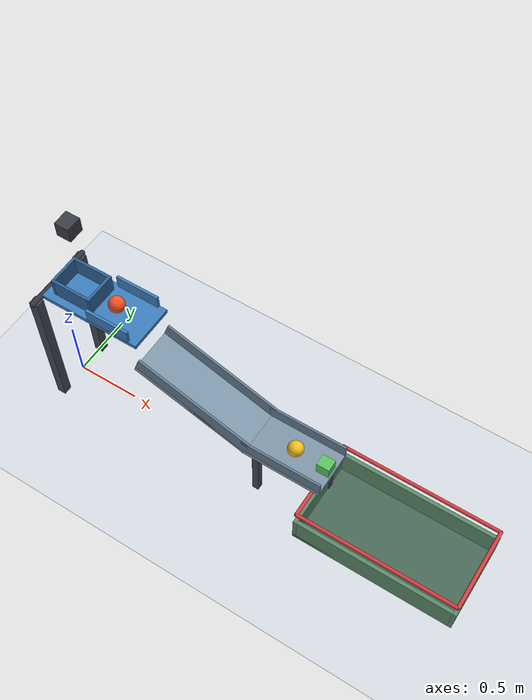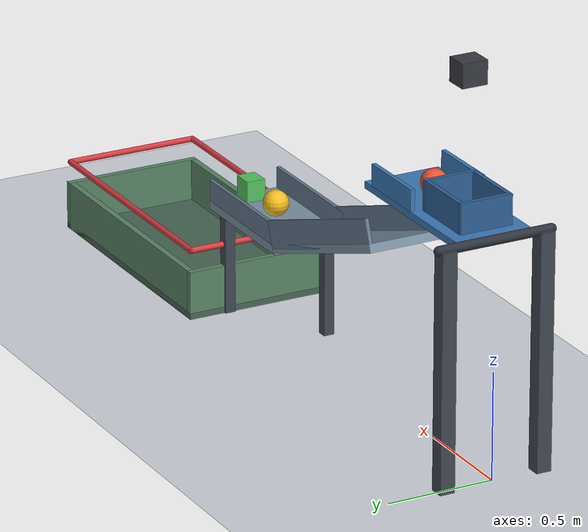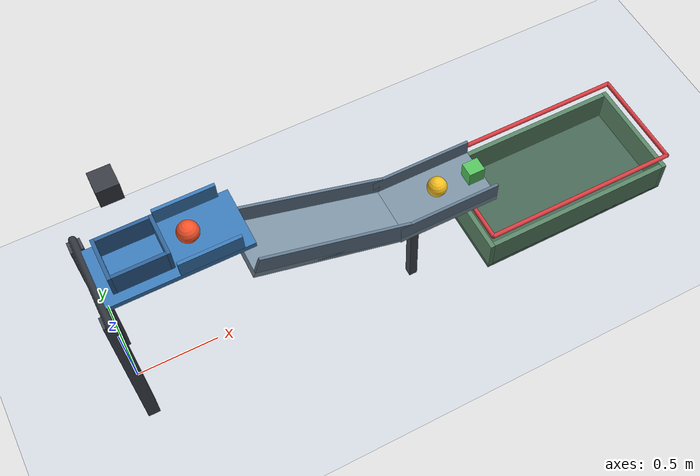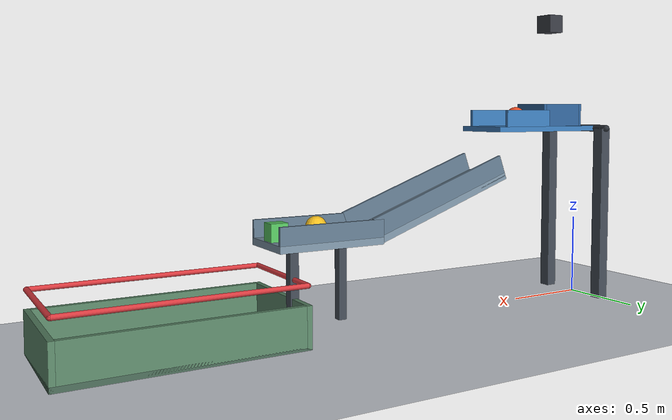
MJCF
<mujoco model="weight_tray_ball_chain">
  <compiler angle="degree" autolimits="true"/>
  <option timestep="0.002" gravity="0 0 -9.81" integrator="implicitfast" solver="Newton" iterations="100" cone="elliptic"/>
  <size njmax="1000" nconmax="300"/>
  <statistic center="1.6 0 0.85" extent="2.6"/>

  <visual>
    <headlight ambient="0.35 0.35 0.35" diffuse="0.75 0.75 0.75" specular="0.15 0.15 0.15"/>
    <global azimuth="135" elevation="-25"/>
  </visual>

  <worldbody>
    <light name="overhead" pos="1 -2 4" dir="0 0 -1" diffuse="0.8 0.8 0.8"/>
    <geom name="floor" type="plane" size="5 3 0.1" pos="0 0 0" friction="0.9 0.01 0.01" condim="6" rgba="0.82 0.84 0.87 1"/>

    <!-- The tray starts horizontal. Positive hinge rotation lowers its right end. -->
    <body name="tray_support" pos="0 0 0">
      <geom name="tray_support_left" type="box" pos="0 -0.235 0.55" size="0.035 0.035 0.55" rgba="0.25 0.28 0.32 1"/>
      <geom name="tray_support_right" type="box" pos="0 0.235 0.55" size="0.035 0.035 0.55" rgba="0.25 0.28 0.32 1"/>
      <geom name="tray_support_axle" type="capsule" fromto="0 -0.27 1.1 0 0.27 1.1" size="0.022" contype="0" conaffinity="0" rgba="0.18 0.20 0.23 1"/>
    </body>

    <body name="tray" pos="0 0 1.1">
      <inertial pos="0.35 0 0.025" mass="0.4" diaginertia="0.005 0.025 0.028"/>
      <joint name="tray_hinge" type="hinge" axis="0 1 0" range="0 20" frictionloss="3" damping="12" armature="0.005" solreflimit="0.015 1"/>
      <geom name="tray_deck" type="box" pos="0.4 0 0" size="0.4 0.18 0.016" friction="0.35 0.003 0.001" condim="6" solref="0.012 1" rgba="0.23 0.48 0.72 1"/>
      <geom name="tray_ball_rail_left" type="box" pos="0.57 -0.17 0.066" size="0.17 0.01 0.05" friction="0.25 0.003 0.001" condim="6" rgba="0.23 0.48 0.72 1"/>
      <geom name="tray_ball_rail_right" type="box" pos="0.57 0.17 0.066" size="0.17 0.01 0.05" friction="0.25 0.003 0.001" condim="6" rgba="0.23 0.48 0.72 1"/>
      <geom name="tray_weight_pocket_back" type="box" pos="0.085 0 0.086" size="0.01 0.125 0.07" friction="0.6 0.005 0.002" rgba="0.18 0.38 0.59 1"/>
      <geom name="tray_weight_pocket_front" type="box" pos="0.385 0 0.086" size="0.01 0.125 0.07" friction="0.6 0.005 0.002" rgba="0.18 0.38 0.59 1"/>
      <geom name="tray_weight_pocket_left" type="box" pos="0.235 -0.115 0.086" size="0.14 0.01 0.07" friction="0.6 0.005 0.002" rgba="0.18 0.38 0.59 1"/>
      <geom name="tray_weight_pocket_right" type="box" pos="0.235 0.115 0.086" size="0.14 0.01 0.07" friction="0.6 0.005 0.002" rgba="0.18 0.38 0.59 1"/>
    </body>

    <!-- Initial bottom-to-deck clearance: 1.771 - 0.055 - 1.116 = 0.600 m. -->
    <body name="weight" pos="0.24 0 1.771">
      <freejoint name="weight_free"/>
      <geom name="weight_geom" type="box" size="0.055 0.06 0.055" mass="3" friction="0.6 0.005 0.002" condim="6" solref="0.012 1" rgba="0.22 0.23 0.26 1"/>
    </body>

    <body name="ball1" pos="0.52 0 1.176">
      <freejoint name="ball1_free"/>
      <geom name="ball1_geom" type="sphere" size="0.06" mass="0.18" friction="0.35 0.003 0.001" condim="6" solref="0.012 1" rgba="0.95 0.32 0.16 1"/>
    </body>

    <!-- This fixed chute meets the tray's discharge end at its 20-degree lower stop. -->
    <body name="chute" pos="1.205 0 0.678035" euler="0 20 0">
      <geom name="chute_deck" type="box" pos="0 0 -0.02" size="0.473565 0.18 0.02" friction="0.3 0.003 0.001" condim="6" solref="0.012 1" rgba="0.48 0.57 0.64 1"/>
      <geom name="chute_rail_left" type="box" pos="0 -0.171 0.045" size="0.473565 0.009 0.065" friction="0.25 0.003 0.001" condim="6" rgba="0.38 0.47 0.55 1"/>
      <geom name="chute_rail_right" type="box" pos="0 0.171 0.045" size="0.473565 0.009 0.065" friction="0.25 0.003 0.001" condim="6" rgba="0.38 0.47 0.55 1"/>
    </body>

    <!-- Ball2 and the block initially rest on the level launch platform. -->
    <body name="launch_platform" pos="0 0 0">
      <geom name="launch_platform_deck" type="box" pos="1.935 0 0.49607" size="0.315 0.18 0.02" friction="0.12 0.003 0.001" condim="6" solref="0.012 1" rgba="0.48 0.57 0.64 1"/>
      <geom name="launch_platform_rail_left" type="box" pos="1.935 -0.171 0.56607" size="0.315 0.009 0.05" friction="0.2 0.003 0.001" condim="6" rgba="0.38 0.47 0.55 1"/>
      <geom name="launch_platform_rail_right" type="box" pos="1.935 0.171 0.56607" size="0.315 0.009 0.05" friction="0.2 0.003 0.001" condim="6" rgba="0.38 0.47 0.55 1"/>
      <geom name="launch_platform_leg_left" type="box" pos="1.72 -0.135 0.238035" size="0.025 0.025 0.238035" rgba="0.25 0.28 0.32 1"/>
      <geom name="launch_platform_leg_right" type="box" pos="2.16 0.135 0.238035" size="0.025 0.025 0.238035" rgba="0.25 0.28 0.32 1"/>
    </body>

    <body name="ball2" pos="1.95 0 0.57607">
      <freejoint name="ball2_free"/>
      <geom name="ball2_geom" type="sphere" size="0.06" mass="0.18" friction="0.35 0.003 0.001" condim="6" solref="0.012 1" rgba="0.96 0.75 0.12 1"/>
    </body>

    <body name="block" pos="2.19 0 0.56607">
      <freejoint name="block_free"/>
      <geom name="block_geom" type="box" size="0.05 0.045 0.05" mass="0.095" friction="0.18 0.004 0.002" condim="6" solref="0.012 1" rgba="0.33 0.76 0.37 1"/>
    </body>

    <!-- A horizontal rectangular hoop surrounds the drop path. -->
    <body name="hoop" pos="2.78 0 0.33">
      <geom name="hoop_left" type="capsule" fromto="-0.62 -0.32 0 -0.62 0.32 0" size="0.014" friction="0.4 0.005 0.002" rgba="0.85 0.23 0.25 1"/>
      <geom name="hoop_right" type="capsule" fromto="0.62 -0.32 0 0.62 0.32 0" size="0.014" friction="0.4 0.005 0.002" rgba="0.85 0.23 0.25 1"/>
      <geom name="hoop_front" type="capsule" fromto="-0.62 -0.32 0 0.62 -0.32 0" size="0.014" friction="0.4 0.005 0.002" rgba="0.85 0.23 0.25 1"/>
      <geom name="hoop_back" type="capsule" fromto="-0.62 0.32 0 0.62 0.32 0" size="0.014" friction="0.4 0.005 0.002" rgba="0.85 0.23 0.25 1"/>
    </body>

    <body name="bin" pos="2.78 0 0">
      <geom name="bin_bottom" type="box" pos="0 0 0.015" size="0.635 0.335 0.015" friction="0.9 0.02 0.02" condim="6" solref="0.015 1" rgba="0.28 0.40 0.33 1"/>
      <geom name="bin_left_wall" type="box" pos="-0.62 0 0.115" size="0.015 0.335 0.115" friction="0.9 0.02 0.02" condim="6" solref="0.015 1" rgba="0.35 0.52 0.40 1"/>
      <geom name="bin_right_wall" type="box" pos="0.62 0 0.115" size="0.015 0.335 0.115" friction="0.9 0.02 0.02" condim="6" solref="0.015 1" rgba="0.35 0.52 0.40 1"/>
      <geom name="bin_front_wall" type="box" pos="0 -0.32 0.115" size="0.605 0.015 0.115" friction="0.9 0.02 0.02" condim="6" solref="0.015 1" rgba="0.35 0.52 0.40 1"/>
      <geom name="bin_back_wall" type="box" pos="0 0.32 0.115" size="0.605 0.015 0.115" friction="0.9 0.02 0.02" condim="6" solref="0.015 1" rgba="0.35 0.52 0.40 1"/>
    </body>
  </worldbody>
</mujoco>
